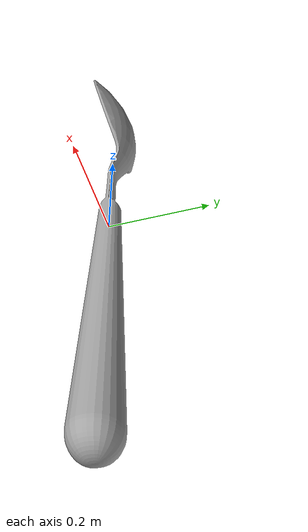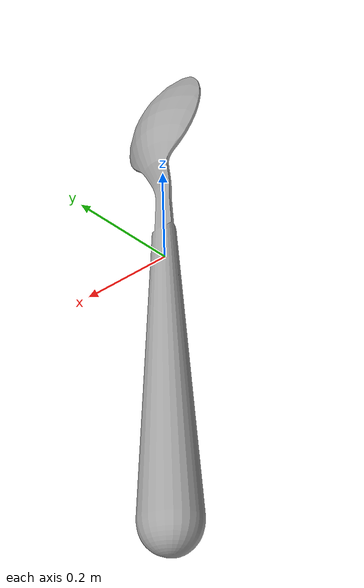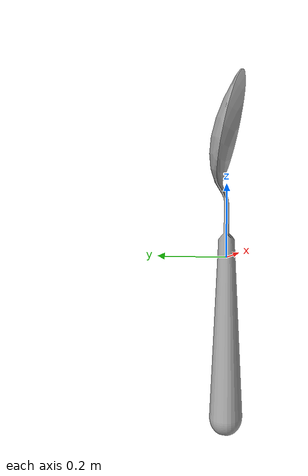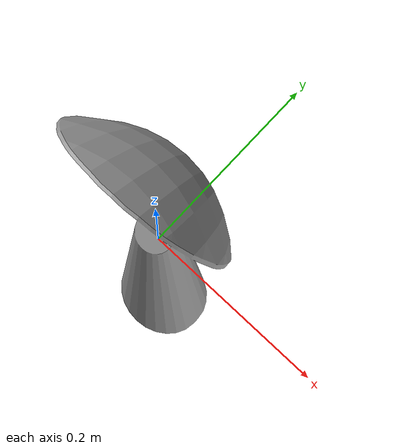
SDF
<?xml version="1.0" ?>
<sdf version="1.5">
  <model name='cutlery7'>
    <pose>0 0 0 0 0 0</pose>
    <static>1</static>
    <link name='body'>
      <collision name="cutlery7-coll">
        <pose>0 0 -0.5 0 0 0</pose>
        <geometry>
          <mesh>
            <uri>model://cutlery7/meshes/cutlery7.dae</uri>
          </mesh>
        </geometry>
      </collision>
      <visual name='cutlery7'>
        <cast_shadows>1</cast_shadows>
        <pose>0 0 -0.5 0 0 0</pose>
        <geometry>
          <mesh>
            <uri>model://cutlery7/meshes/cutlery7.dae</uri>
          </mesh>
        </geometry>
      </visual>
      <velocity_decay>
        <linear>0</linear>
        <angular>0</angular>
      </velocity_decay>
      <self_collide>0</self_collide>
      <kinematic>0</kinematic>
      <gravity>1</gravity>
    </link>
  </model>

</sdf>
